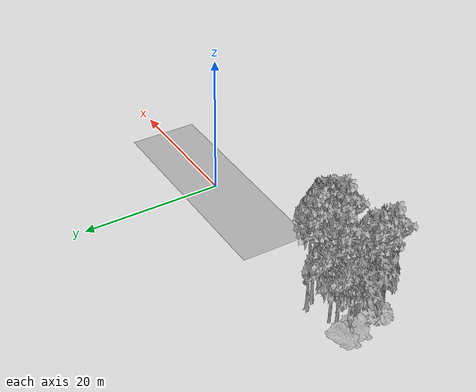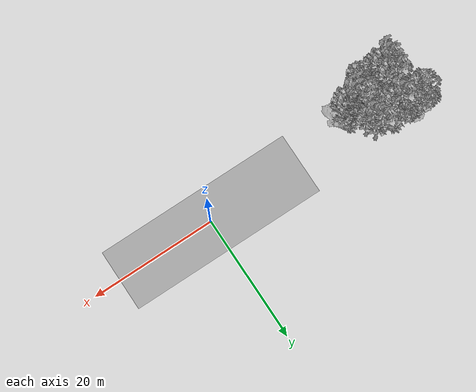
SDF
<sdf version="1.7">
 <world name="default">
  <model name="ground_plane">
   <static>1</static>
   <link name="link">
    <collision name="collision">
     <pose>-50 0 0 0 -0 0</pose>
     <geometry><plane><normal>0 0 1</normal><size>100 100</size></plane></geometry>
     <surface><contact><ode><min_depth>0.01</min_depth><max_vel>0</max_vel></ode></contact></surface>
    </collision>
    <visual name="grass">
     <cast_shadows>0</cast_shadows>
     <geometry>
      <mesh>
       <scale>0.5814285714285714 0.18142857142857144 0.1</scale>
       <uri>file://grass_plane/meshes/grass_plane.dae</uri>
      </mesh>
     </geometry>
    </visual>
   </link>
  </model>
  <model name="Tree 16">
   <static>1</static>
   <pose>-29.650979372544978 -3.697761400649698 0 1.57079 -0 0</pose>
   <link name="link">
    <collision name="collision">
     <geometry><mesh><scale>3.5 5 3.5</scale><uri>model://tree_2/meshes/tree_2.obj</uri></mesh></geometry>
    </collision>
    <visual name="visual">
     <geometry><mesh><scale>3.5 5 3.5</scale><uri>model://tree_2/meshes/tree_2.obj</uri></mesh></geometry>
    </visual>
   </link>
  </model>
  <model name="Tree 26">
   <static>1</static>
   <pose>-31.216376603396792 1.3551016047219555 0 1.57079 -0 0</pose>
   <link name="link">
    <collision name="collision">
     <geometry><mesh><scale>3.5 5 3.5</scale><uri>model://tree_9/meshes/tree_9.obj</uri></mesh></geometry>
    </collision>
    <visual name="visual">
     <geometry><mesh><scale>3.5 5 3.5</scale><uri>model://tree_9/meshes/tree_9.obj</uri></mesh></geometry>
    </visual>
   </link>
  </model>
  <model name="Tree 38">
   <static>1</static>
   <pose>-30.050237947576207 -2.4629366592293227 0 1.57079 -0 0</pose>
   <link name="link">
    <collision name="collision">
     <geometry><mesh><scale>3.5 5 3.5</scale><uri>model://tree_2/meshes/tree_2.obj</uri></mesh></geometry>
    </collision>
    <visual name="visual">
     <geometry><mesh><scale>3.5 5 3.5</scale><uri>model://tree_2/meshes/tree_2.obj</uri></mesh></geometry>
    </visual>
   </link>
  </model>
  <model name="Tree 40">
   <static>1</static>
   <pose>-34.42022499762193 1.9622001357616021 0 1.57079 -0 0</pose>
   <link name="link">
    <collision name="collision">
     <geometry><mesh><scale>3.5 5 3.5</scale><uri>model://tree_2/meshes/tree_2.obj</uri></mesh></geometry>
    </collision>
    <visual name="visual">
     <geometry><mesh><scale>3.5 5 3.5</scale><uri>model://tree_2/meshes/tree_2.obj</uri></mesh></geometry>
    </visual>
   </link>
  </model>
  <model name="Tree 52">
   <static>1</static>
   <pose>-30.7295238837358 2.0646587160425227 0 1.57079 -0 0</pose>
   <link name="link">
    <collision name="collision">
     <geometry><mesh><scale>3.5 5 3.5</scale><uri>model://tree_2/meshes/tree_2.obj</uri></mesh></geometry>
    </collision>
    <visual name="visual">
     <geometry><mesh><scale>3.5 5 3.5</scale><uri>model://tree_2/meshes/tree_2.obj</uri></mesh></geometry>
    </visual>
   </link>
  </model>
  <model name="Tree 55">
   <static>1</static>
   <pose>-34.01327616082503 0.5826624440245478 0 1.57079 -0 0</pose>
   <link name="link">
    <collision name="collision">
     <geometry><mesh><scale>3 2 3</scale><uri>model://tree_3/meshes/tree_3.obj</uri></mesh></geometry>
    </collision>
    <visual name="visual">
     <geometry><mesh><scale>3 2 3</scale><uri>model://tree_3/meshes/tree_3.obj</uri></mesh></geometry>
    </visual>
   </link>
  </model>
  <model name="Tree 89">
   <static>1</static>
   <pose>-32.65691171339643 -2.2755589920366255 0 1.57079 -0 0</pose>
   <link name="link">
    <collision name="collision">
     <geometry><mesh><scale>3.5 5 3.5</scale><uri>model://tree_9/meshes/tree_9.obj</uri></mesh></geometry>
    </collision>
    <visual name="visual">
     <geometry><mesh><scale>3.5 5 3.5</scale><uri>model://tree_9/meshes/tree_9.obj</uri></mesh></geometry>
    </visual>
   </link>
  </model>
  <model name="Tree 103">
   <static>1</static>
   <pose>-25.524505371506088 -2.1736012684172117 0 1.57079 -0 0</pose>
   <link name="link">
    <collision name="collision">
     <geometry><mesh><scale>3.5 5 3.5</scale><uri>model://tree_9/meshes/tree_9.obj</uri></mesh></geometry>
    </collision>
    <visual name="visual">
     <geometry><mesh><scale>3.5 5 3.5</scale><uri>model://tree_9/meshes/tree_9.obj</uri></mesh></geometry>
    </visual>
   </link>
  </model>
  <model name="Tree 115">
   <static>1</static>
   <pose>-31.27222126036341 -2.0003526135622955 0 1.57079 -0 0</pose>
   <link name="link">
    <collision name="collision">
     <geometry><mesh><scale>3.5 5 3.5</scale><uri>model://tree_2/meshes/tree_2.obj</uri></mesh></geometry>
    </collision>
    <visual name="visual">
     <geometry><mesh><scale>3.5 5 3.5</scale><uri>model://tree_2/meshes/tree_2.obj</uri></mesh></geometry>
    </visual>
   </link>
  </model>
  <model name="Tree 160">
   <static>1</static>
   <pose>-32.18047685478376 -1.864684273392509 0 1.57079 -0 0</pose>
   <link name="link">
    <collision name="collision">
     <geometry><mesh><scale>3.5 5 3.5</scale><uri>model://tree_2/meshes/tree_2.obj</uri></mesh></geometry>
    </collision>
    <visual name="visual">
     <geometry><mesh><scale>3.5 5 3.5</scale><uri>model://tree_2/meshes/tree_2.obj</uri></mesh></geometry>
    </visual>
   </link>
  </model>
  <model name="Tree 197">
   <static>1</static>
   <pose>-24.653606305822613 -0.6511346226840153 0 1.57079 -0 0</pose>
   <link name="link">
    <collision name="collision">
     <geometry><mesh><scale>3.5 5 3.5</scale><uri>model://tree_9/meshes/tree_9.obj</uri></mesh></geometry>
    </collision>
    <visual name="visual">
     <geometry><mesh><scale>3.5 5 3.5</scale><uri>model://tree_9/meshes/tree_9.obj</uri></mesh></geometry>
    </visual>
   </link>
  </model>
  <model name="Tree 284">
   <static>1</static>
   <pose>-24.77995559887095 -0.5377058779527673 0 1.57079 -0 0</pose>
   <link name="link">
    <collision name="collision">
     <geometry><mesh><scale>3.5 5 3.5</scale><uri>model://tree_9/meshes/tree_9.obj</uri></mesh></geometry>
    </collision>
    <visual name="visual">
     <geometry><mesh><scale>3.5 5 3.5</scale><uri>model://tree_9/meshes/tree_9.obj</uri></mesh></geometry>
    </visual>
   </link>
  </model>
  <model name="Tree 295">
   <static>1</static>
   <pose>-34.4470685126292 2.4547927687906075 0 1.57079 -0 0</pose>
   <link name="link">
    <collision name="collision">
     <geometry><mesh><scale>3 2 3</scale><uri>model://tree_3/meshes/tree_3.obj</uri></mesh></geometry>
    </collision>
    <visual name="visual">
     <geometry><mesh><scale>3 2 3</scale><uri>model://tree_3/meshes/tree_3.obj</uri></mesh></geometry>
    </visual>
   </link>
  </model>
  <model name="Tree 297">
   <static>1</static>
   <pose>-25.51377325577998 -1.3876598168269325 0 1.57079 -0 0</pose>
   <link name="link">
    <collision name="collision">
     <geometry><mesh><scale>3.5 5 3.5</scale><uri>model://tree_2/meshes/tree_2.obj</uri></mesh></geometry>
    </collision>
    <visual name="visual">
     <geometry><mesh><scale>3.5 5 3.5</scale><uri>model://tree_2/meshes/tree_2.obj</uri></mesh></geometry>
    </visual>
   </link>
  </model>
  <model name="Tree 298">
   <static>1</static>
   <pose>-28.085589024107637 -1.8629200527749674 0 1.57079 -0 0</pose>
   <link name="link">
    <collision name="collision">
     <geometry><mesh><scale>3 2 3</scale><uri>model://tree_3/meshes/tree_3.obj</uri></mesh></geometry>
    </collision>
    <visual name="visual">
     <geometry><mesh><scale>3 2 3</scale><uri>model://tree_3/meshes/tree_3.obj</uri></mesh></geometry>
    </visual>
   </link>
  </model>
  <model name="Tree 393">
   <static>1</static>
   <pose>-32.7588052804351 -4.209457963180714 0 1.57079 -0 0</pose>
   <link name="link">
    <collision name="collision">
     <geometry><mesh><scale>3.5 5 3.5</scale><uri>model://tree_9/meshes/tree_9.obj</uri></mesh></geometry>
    </collision>
    <visual name="visual">
     <geometry><mesh><scale>3.5 5 3.5</scale><uri>model://tree_9/meshes/tree_9.obj</uri></mesh></geometry>
    </visual>
   </link>
  </model>
  <model name="Tree 399">
   <static>1</static>
   <pose>-26.60295043391434 -2.0540998361599367 0 1.57079 -0 0</pose>
   <link name="link">
    <collision name="collision">
     <geometry><mesh><scale>3.5 5 3.5</scale><uri>model://tree_9/meshes/tree_9.obj</uri></mesh></geometry>
    </collision>
    <visual name="visual">
     <geometry><mesh><scale>3.5 5 3.5</scale><uri>model://tree_9/meshes/tree_9.obj</uri></mesh></geometry>
    </visual>
   </link>
  </model>
  <model name="Tree 438">
   <static>1</static>
   <pose>-24.246968933195618 -3.4983344764453115 0 1.57079 -0 0</pose>
   <link name="link">
    <collision name="collision">
     <geometry><mesh><scale>3 2 3</scale><uri>model://tree_3/meshes/tree_3.obj</uri></mesh></geometry>
    </collision>
    <visual name="visual">
     <geometry><mesh><scale>3 2 3</scale><uri>model://tree_3/meshes/tree_3.obj</uri></mesh></geometry>
    </visual>
   </link>
  </model>
  <model name="Tree 444">
   <static>1</static>
   <pose>-33.68881463353736 -2.78518403304855 0 1.57079 -0 0</pose>
   <link name="link">
    <collision name="collision">
     <geometry><mesh><scale>4 2.5 4</scale><uri>model://tree_1/meshes/tree_1.obj</uri></mesh></geometry>
    </collision>
    <visual name="visual">
     <geometry><mesh><scale>4 2.5 4</scale><uri>model://tree_1/meshes/tree_1.obj</uri></mesh></geometry>
    </visual>
   </link>
  </model>
  <model name="Tree 489">
   <static>1</static>
   <pose>-26.166316111782546 1.5667816858189383 0 1.57079 -0 0</pose>
   <link name="link">
    <collision name="collision">
     <geometry><mesh><scale>3.5 5 3.5</scale><uri>model://tree_9/meshes/tree_9.obj</uri></mesh></geometry>
    </collision>
    <visual name="visual">
     <geometry><mesh><scale>3.5 5 3.5</scale><uri>model://tree_9/meshes/tree_9.obj</uri></mesh></geometry>
    </visual>
   </link>
  </model>
  <model name="Tree 526">
   <static>1</static>
   <pose>-26.96896826626991 2.8103640904956997 0 1.57079 -0 0</pose>
   <link name="link">
    <collision name="collision">
     <geometry><mesh><scale>3.5 5 3.5</scale><uri>model://tree_9/meshes/tree_9.obj</uri></mesh></geometry>
    </collision>
    <visual name="visual">
     <geometry><mesh><scale>3.5 5 3.5</scale><uri>model://tree_9/meshes/tree_9.obj</uri></mesh></geometry>
    </visual>
   </link>
  </model>
  <model name="Bush 2">
   <static>1</static>
   <pose>-27.691232789008193 -4.277428260215107 0 1.57079 -0 0</pose>
   <link name="link">
    <collision name="collision">
     <geometry><mesh><scale>2 2 2</scale><uri>model://bush_3/meshes/bush_3.obj</uri></mesh></geometry>
     <surface><contact><collide_without_contact>false</collide_without_contact></contact></surface>
    </collision>
    <visual name="visual">
     <geometry><mesh><scale>2 2 2</scale><uri>model://bush_3/meshes/bush_3.obj</uri></mesh></geometry>
    </visual>
   </link>
  </model>
 </world>
</sdf>
